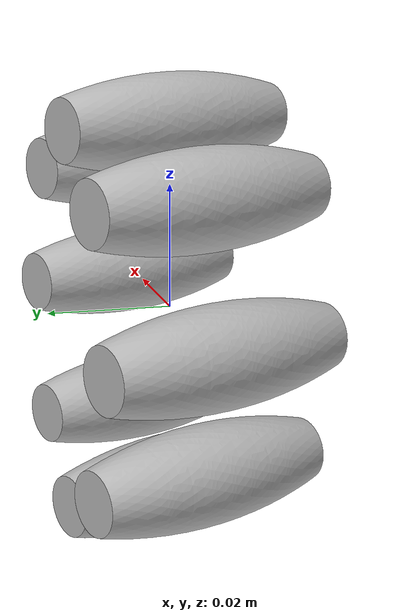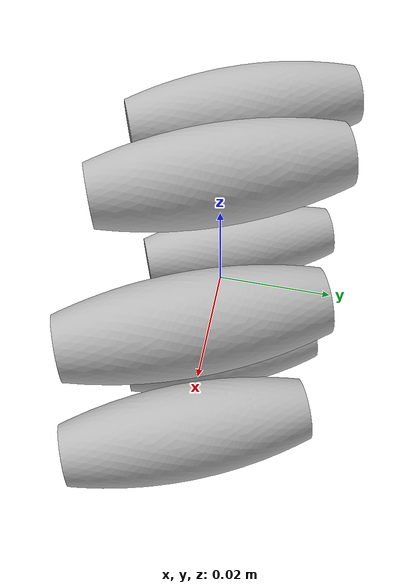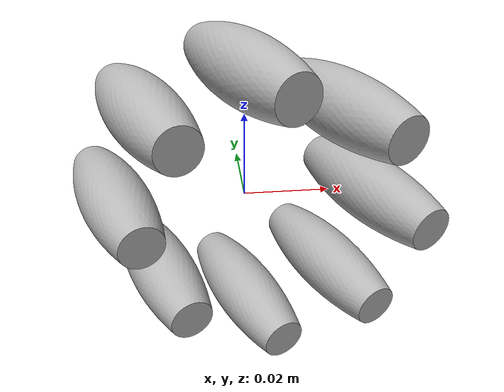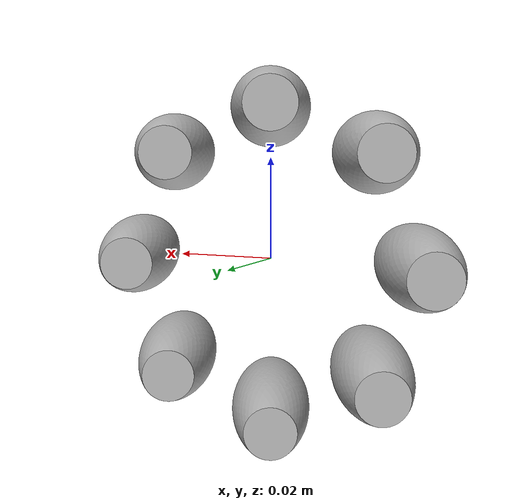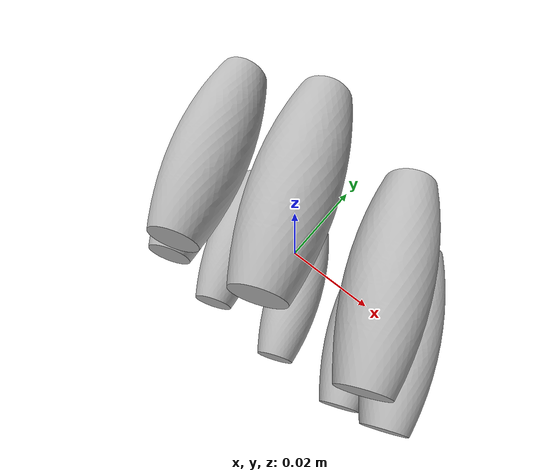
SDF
<?xml version='1.0'?>
<sdf version='1.11'>
  <model name='mecanum-wheel'>
	<!-- keep static for now -->
    <static>true</static>

	<link name='mw-l1'>
	  <pose>0 0 0.03 0 0 0.3927</pose>
	  <visual name='mw-l1-v'>
	  	<geometry>
		  <mesh>
		    <uri>file://mecanum-roller.stl</uri>
			<scale>0.001 0.001 0.001</scale>
		  </mesh>
		</geometry>
	  </visual>
	  <collision name='mw-l1-c'>
	  </collision>
	</link>

	<link name='mw-l2'>
	  <pose>0.0212 0 0.0212 0 0.7854 0.3927</pose>
	  <visual name='mw-l2-v'>
	  	<geometry>
		  <mesh>
		    <uri>file://mecanum-roller.stl</uri>
			<scale>0.001 0.001 0.001</scale>
		  </mesh>
		</geometry>
	  </visual>
	  <collision name='mw-l2-c'>
	  </collision>
	</link>

	<link name='mw-l3'>
	  <pose>0.03 0 0 0 1.5707 0.3926</pose>
	  <visual name='mw-l3-v'>
	  	<geometry>
		  <mesh>
		    <uri>file://mecanum-roller.stl</uri>
			<scale>0.001 0.001 0.001</scale>
		  </mesh>
		</geometry>
	  </visual>
	  <collision name='mw-l3-c'>
	  </collision>
	</link>

	<link name='mw-l4'>
	  <pose>0.0212 0 -0.0212 3.1415 0.7854 -2.7488</pose>
	  <visual name='mw-l4-v'>
	  	<geometry>
		  <mesh>
		    <uri>file://mecanum-roller.stl</uri>
			<scale>0.001 0.001 0.001</scale>
		  </mesh>
		</geometry>
	  </visual>
	  <collision name='mw-l4-c'>
	  </collision>
	</link>

	<link name='mw-l5'>
	  <pose>0 0 -0.03 3.1415 0 -2.7488</pose>
	  <visual name='mw-l5-v'>
	  	<geometry>
		  <mesh>
		    <uri>file://mecanum-roller.stl</uri>
			<scale>0.001 0.001 0.001</scale>
		  </mesh>
		</geometry>
	  </visual>
	  <collision name='mw-l5-c'>
	  </collision>
	</link>

	<link name='mw-l6'>
	  <pose>-0.0212 0 -0.0212 3.1415 -0.78539 -2.7488</pose>
	  <visual name='mw-l6-v'>
	  	<geometry>
		  <mesh>
		    <uri>file://mecanum-roller.stl</uri>
			<scale>0.001 0.001 0.001</scale>
		  </mesh>
		</geometry>
	  </visual>
	  <collision name='mw-l6-c'>
	  </collision>
	</link>

	<link name='mw-l7'>
	  <pose>-0.03 0 0 3.1415 -1.5707 -2.7489</pose>
	  <visual name='mw-l7-v'>
	  	<geometry>
		  <mesh>
		    <uri>file://mecanum-roller.stl</uri>
			<scale>0.001 0.001 0.001</scale>
		  </mesh>
		</geometry>
	  </visual>
	  <collision name='mw-l7-c'>
	  </collision>
	</link>

	<link name='mw-l8'>
	  <pose>-0.0212 0 0.0212 0 -0.7854 0.3927</pose>
	  <visual name='mw-l8-v'>
	  	<geometry>
		  <mesh>
		    <uri>file://mecanum-roller.stl</uri>
			<scale>0.001 0.001 0.001</scale>
		  </mesh>
		</geometry>
	  </visual>
	  <collision name='mw-l8-c'>
	  </collision>
	</link>

  </model>
</sdf>
